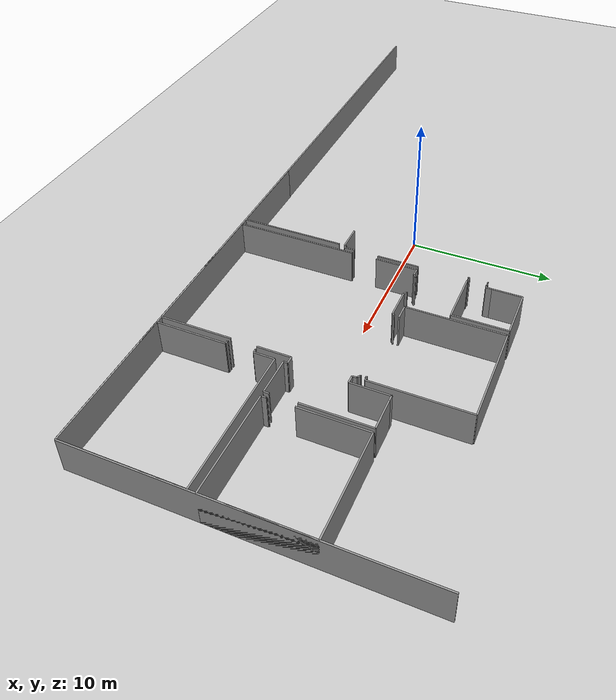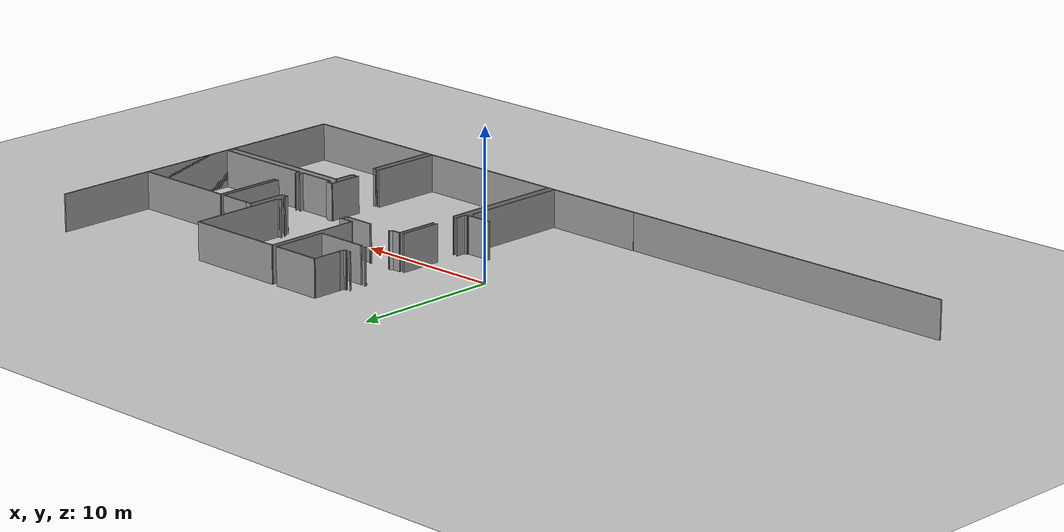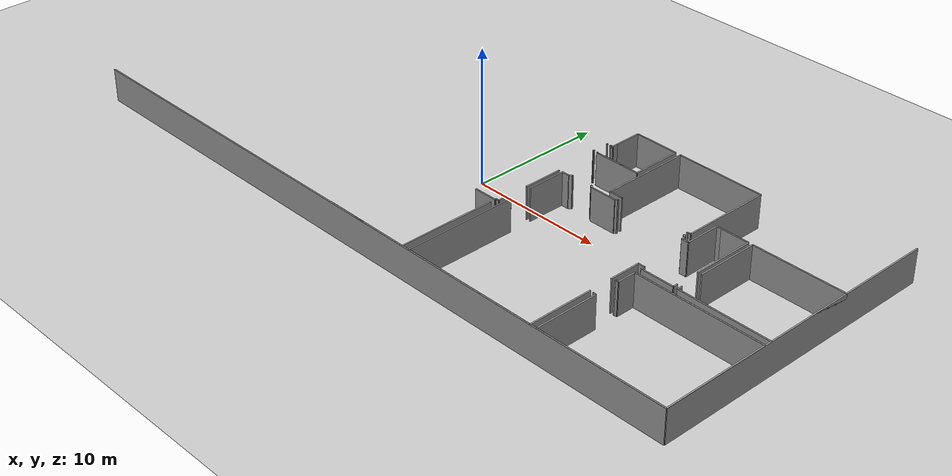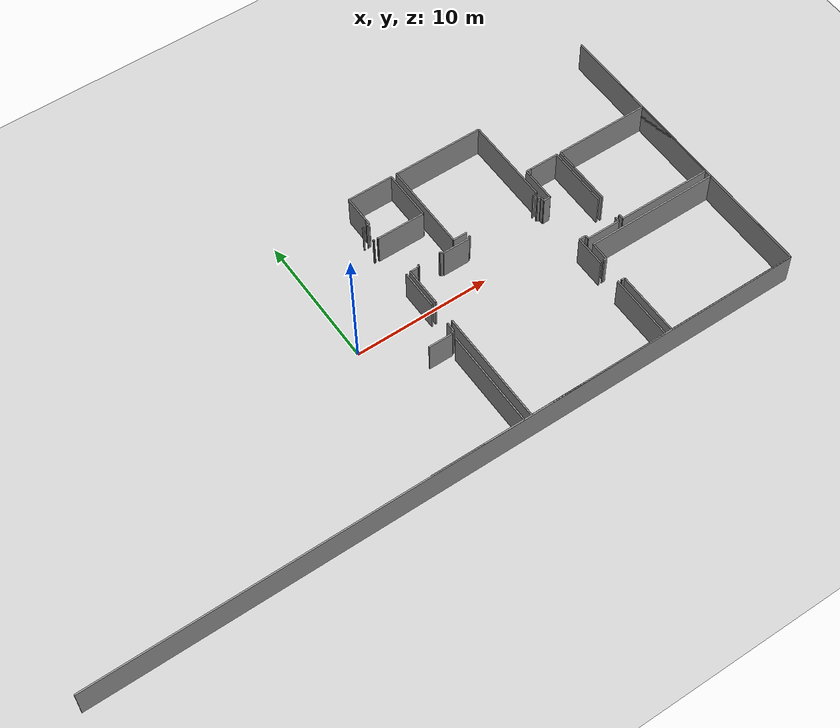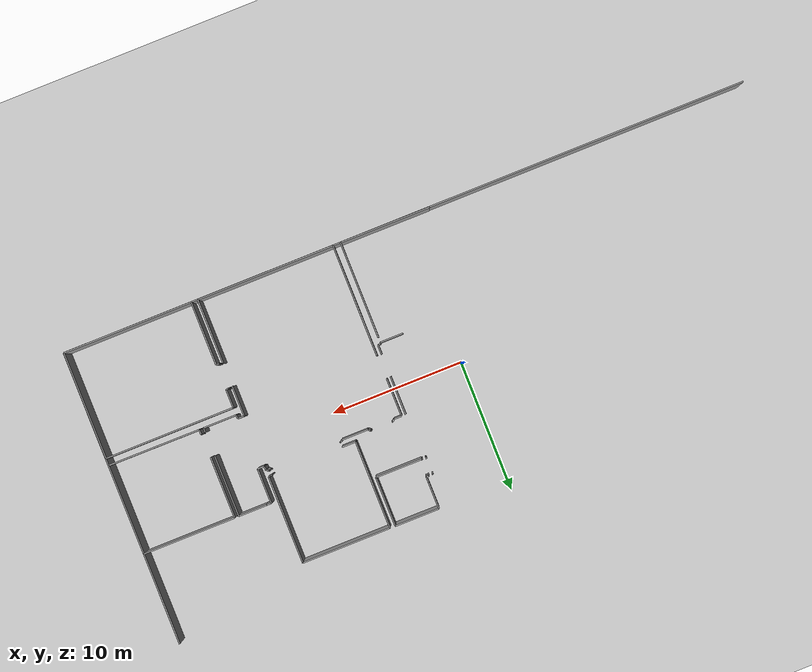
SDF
<sdf version="1.6">
 <world name="default">
  <model name="ground_plane">
   <static>1</static>
   <link name="link">
    <collision name="collision">
     <geometry><plane><normal>0 0 1</normal><size>100 100</size></plane></geometry>
     <surface><friction><ode><mu>100</mu><mu2>50</mu2></ode></friction></surface>
    </collision>
    <visual name="visual">
     <cast_shadows>0</cast_shadows>
     <geometry><plane><normal>0 0 1</normal><size>100 100</size></plane></geometry>
     <material>
      <script><uri>file://media/materials/scripts/gazebo.material</uri><name>Gazebo/Grey</name></script>
     </material>
    </visual>
   </link>
  </model>
  <model name="0510030938_A_40_1_102">
   <static>1</static>
   <link name="Wall_103">
    <collision name="Wall_103_Collision">
     <geometry><box><size>0.0706623964211 0.1 2.5</size></box></geometry>
     <pose>0.0353311982106 0 1.25 0 0 0</pose>
    </collision>
    <visual name="Wall_103_Visual">
     <pose>0.0353311982106 0 1.25 0 0 0</pose>
     <geometry><box><size>0.0706623964211 0.1 2.5</size></box></geometry>
     <material>
      <script><uri>file://media/materials/scripts/gazebo.material</uri><name>Gazebo/Grey</name></script>
      <ambient>1 1 1 1</ambient>
     </material>
    </visual>
    <pose>31.049768695 -4.50993848813 0 0 0 -1.57079632679</pose>
   </link>
   <link name="Wall_104">
    <collision name="Wall_104_Collision">
     <geometry><box><size>0.108027044888 0.1 2.5</size></box></geometry>
     <pose>0.0540135224442 0 1.25 0 0 0</pose>
    </collision>
    <visual name="Wall_104_Visual">
     <pose>0.0540135224442 0 1.25 0 0 0</pose>
     <geometry><box><size>0.108027044888 0.1 2.5</size></box></geometry>
     <material>
      <script><uri>file://media/materials/scripts/gazebo.material</uri><name>Gazebo/Grey</name></script>
      <ambient>1 1 1 1</ambient>
     </material>
    </visual>
    <pose>31.049768695 -5.74106552793 0 0 0 -1.57079632679</pose>
   </link>
   <link name="Wall_105">
    <collision name="Wall_105_Collision">
     <geometry><box><size>0.0189365055157 0.1 2.5</size></box></geometry>
     <pose>0.00946825275786 0 1.25 0 0 0</pose>
    </collision>
    <visual name="Wall_105_Visual">
     <pose>0.00946825275786 0 1.25 0 0 0</pose>
     <geometry><box><size>0.0189365055157 0.1 2.5</size></box></geometry>
     <material>
      <script><uri>file://media/materials/scripts/gazebo.material</uri><name>Gazebo/Grey</name></script>
      <ambient>1 1 1 1</ambient>
     </material>
    </visual>
    <pose>31.049768695 -5.84909257282 0 0 0 3.14159265359</pose>
   </link>
   <link name="Wall_117">
    <collision name="Wall_117_Collision">
     <geometry><box><size>2.02252046159 0.1 2.5</size></box></geometry>
     <pose>1.0112602308 0 1.25 0 0 0</pose>
    </collision>
    <visual name="Wall_117_Visual">
     <pose>1.0112602308 0 1.25 0 0 0</pose>
     <geometry><box><size>2.02252046159 0.1 2.5</size></box></geometry>
     <material>
      <script><uri>file://media/materials/scripts/gazebo.material</uri><name>Gazebo/Grey</name></script>
      <ambient>1 1 1 1</ambient>
     </material>
    </visual>
    <pose>31.5492349143 -4.12739565858 0 0 0 1.57079632679</pose>
   </link>
   <link name="Wall_118">
    <collision name="Wall_118_Collision">
     <geometry><box><size>3.36053073052 0.1 2.5</size></box></geometry>
     <pose>1.68026536526 0 1.25 0 0 0</pose>
    </collision>
    <visual name="Wall_118_Visual">
     <pose>1.68026536526 0 1.25 0 0 0</pose>
     <geometry><box><size>3.36053073052 0.1 2.5</size></box></geometry>
     <material>
      <script><uri>file://media/materials/scripts/gazebo.material</uri><name>Gazebo/Grey</name></script>
      <ambient>1 1 1 1</ambient>
     </material>
    </visual>
    <pose>31.5492349143 -2.10487519699 0 0 0 0.0</pose>
   </link>
   <link name="Wall_119">
    <collision name="Wall_119_Collision">
     <geometry><box><size>3.74065883788 0.1 2.5</size></box></geometry>
     <pose>1.87032941894 0 1.25 0 0 0</pose>
    </collision>
    <visual name="Wall_119_Visual">
     <pose>1.87032941894 0 1.25 0 0 0</pose>
     <geometry><box><size>3.74065883788 0.1 2.5</size></box></geometry>
     <material>
      <script><uri>file://media/materials/scripts/gazebo.material</uri><name>Gazebo/Grey</name></script>
      <ambient>1 1 1 1</ambient>
     </material>
    </visual>
    <pose>34.9097656449 -2.10487519699 0 0 0 -1.57079632679</pose>
   </link>
   <link name="Wall_120">
    <collision name="Wall_120_Collision">
     <geometry><box><size>3.54468506939 0.1 2.5</size></box></geometry>
     <pose>1.7723425347 0 1.25 0 0 0</pose>
    </collision>
    <visual name="Wall_120_Visual">
     <pose>1.7723425347 0 1.25 0 0 0</pose>
     <geometry><box><size>3.54468506939 0.1 2.5</size></box></geometry>
     <material>
      <script><uri>file://media/materials/scripts/gazebo.material</uri><name>Gazebo/Grey</name></script>
      <ambient>1 1 1 1</ambient>
     </material>
    </visual>
    <pose>34.9097656449 -5.84553403487 0 0 0 3.14159265359</pose>
   </link>
   <link name="Wall_121">
    <collision name="Wall_121_Collision">
     <geometry><box><size>0.0822276447562 0.1 2.5</size></box></geometry>
     <pose>0.0411138223781 0 1.25 0 0 0</pose>
    </collision>
    <visual name="Wall_121_Visual">
     <pose>0.0411138223781 0 1.25 0 0 0</pose>
     <geometry><box><size>0.0822276447562 0.1 2.5</size></box></geometry>
     <material>
      <script><uri>file://media/materials/scripts/gazebo.material</uri><name>Gazebo/Grey</name></script>
      <ambient>1 1 1 1</ambient>
     </material>
    </visual>
    <pose>31.3650805755 -5.84553403487 0 0 0 1.57079632679</pose>
   </link>
   <link name="Wall_122">
    <collision name="Wall_122_Collision">
     <geometry><box><size>0.0686289461644 0.1 2.5</size></box></geometry>
     <pose>0.0343144730822 0 1.25 0 0 0</pose>
    </collision>
    <visual name="Wall_122_Visual">
     <pose>0.0343144730822 0 1.25 0 0 0</pose>
     <geometry><box><size>0.0686289461644 0.1 2.5</size></box></geometry>
     <material>
      <script><uri>file://media/materials/scripts/gazebo.material</uri><name>Gazebo/Grey</name></script>
      <ambient>1 1 1 1</ambient>
     </material>
    </visual>
    <pose>31.3650805755 -4.5884805043 0 0 0 1.57079632679</pose>
   </link>
   <link name="Wall_123">
    <collision name="Wall_123_Collision">
     <geometry><box><size>0.185933607849 0.1 2.5</size></box></geometry>
     <pose>0.0929668039246 0 1.25 0 0 0</pose>
    </collision>
    <visual name="Wall_123_Visual">
     <pose>0.0929668039246 0 1.25 0 0 0</pose>
     <geometry><box><size>0.185933607849 0.1 2.5</size></box></geometry>
     <material>
      <script><uri>file://media/materials/scripts/gazebo.material</uri><name>Gazebo/Grey</name></script>
      <ambient>1 1 1 1</ambient>
     </material>
    </visual>
    <pose>31.3650805755 -4.51985155813 0 0 0 0.0</pose>
   </link>
   <link name="Wall_124">
    <collision name="Wall_124_Collision">
     <geometry><box><size>0.392459932844 0.1 2.5</size></box></geometry>
     <pose>0.196229966422 0 1.25 0 0 0</pose>
    </collision>
    <visual name="Wall_124_Visual">
     <pose>0.196229966422 0 1.25 0 0 0</pose>
     <geometry><box><size>0.392459932844 0.1 2.5</size></box></geometry>
     <material>
      <script><uri>file://media/materials/scripts/gazebo.material</uri><name>Gazebo/Grey</name></script>
      <ambient>1 1 1 1</ambient>
     </material>
    </visual>
    <pose>31.5510141833 -4.51985155813 0 0 0 1.57532997449</pose>
   </link>
   <link name="Wall_154">
    <collision name="Wall_154_Collision">
     <geometry><box><size>7.29792588074 0.1 2.5</size></box></geometry>
     <pose>3.64896294037 0 1.25 0 0 0</pose>
    </collision>
    <visual name="Wall_154_Visual">
     <pose>3.64896294037 0 1.25 0 0 0</pose>
     <geometry><box><size>7.29792588074 0.1 2.5</size></box></geometry>
     <material>
      <script><uri>file://media/materials/scripts/gazebo.material</uri><name>Gazebo/Grey</name></script>
      <ambient>1 1 1 1</ambient>
     </material>
    </visual>
    <pose>31.0430328911 -15.0887092674 0 0 0 -1.57079632679</pose>
   </link>
   <link name="Wall_155">
    <collision name="Wall_155_Collision">
     <geometry><box><size>6.85058767749 0.1 2.5</size></box></geometry>
     <pose>3.42529383874 0 1.25 0 0 0</pose>
    </collision>
    <visual name="Wall_155_Visual">
     <pose>3.42529383874 0 1.25 0 0 0</pose>
     <geometry><box><size>6.85058767749 0.1 2.5</size></box></geometry>
     <material>
      <script><uri>file://media/materials/scripts/gazebo.material</uri><name>Gazebo/Grey</name></script>
      <ambient>1 1 1 1</ambient>
     </material>
    </visual>
    <pose>31.0430328911 -22.3866351482 0 0 0 3.13912526346</pose>
   </link>
   <link name="Wall_197">
    <collision name="Wall_197_Collision">
     <geometry><box><size>2.92333892532 0.1 2.5</size></box></geometry>
     <pose>1.46166946266 0 1.25 0 0 0</pose>
    </collision>
    <visual name="Wall_197_Visual">
     <pose>1.46166946266 0 1.25 0 0 0</pose>
     <geometry><box><size>2.92333892532 0.1 2.5</size></box></geometry>
     <material>
      <script><uri>file://media/materials/scripts/gazebo.material</uri><name>Gazebo/Grey</name></script>
      <ambient>1 1 1 1</ambient>
     </material>
    </visual>
    <pose>31.2686187789 -9.23694779116 0 0 0 -1.57079632679</pose>
   </link>
   <link name="Wall_198">
    <collision name="Wall_198_Collision">
     <geometry><box><size>0.722891566265 0.1 2.5</size></box></geometry>
     <pose>0.361445783133 0 1.25 0 0 0</pose>
    </collision>
    <visual name="Wall_198_Visual">
     <pose>0.361445783133 0 1.25 0 0 0</pose>
     <geometry><box><size>0.722891566265 0.1 2.5</size></box></geometry>
     <material>
      <script><uri>file://media/materials/scripts/gazebo.material</uri><name>Gazebo/Grey</name></script>
      <ambient>1 1 1 1</ambient>
     </material>
    </visual>
    <pose>31.2686187789 -13.8716892888 0 0 0 -1.57079632679</pose>
   </link>
   <link name="Wall_199">
    <collision name="Wall_199_Collision">
     <geometry><box><size>0.212876823751 0.1 2.5</size></box></geometry>
     <pose>0.106438411875 0 1.25 0 0 0</pose>
    </collision>
    <visual name="Wall_199_Visual">
     <pose>0.106438411875 0 1.25 0 0 0</pose>
     <geometry><box><size>0.212876823751 0.1 2.5</size></box></geometry>
     <material>
      <script><uri>file://media/materials/scripts/gazebo.material</uri><name>Gazebo/Grey</name></script>
      <ambient>1 1 1 1</ambient>
     </material>
    </visual>
    <pose>31.2686187789 -14.5945808551 0 0 0 3.14159265359</pose>
   </link>
   <link name="Wall_200">
    <collision name="Wall_200_Collision">
     <geometry><box><size>0.103833053734 0.1 2.5</size></box></geometry>
     <pose>0.051916526867 0 1.25 0 0 0</pose>
    </collision>
    <visual name="Wall_200_Visual">
     <pose>0.051916526867 0 1.25 0 0 0</pose>
     <geometry><box><size>0.103833053734 0.1 2.5</size></box></geometry>
     <material>
      <script><uri>file://media/materials/scripts/gazebo.material</uri><name>Gazebo/Grey</name></script>
      <ambient>1 1 1 1</ambient>
     </material>
    </visual>
    <pose>31.0557419552 -14.5945808551 0 0 0 -1.57079632679</pose>
   </link>
   <link name="Wall_201">
    <collision name="Wall_201_Collision">
     <geometry><box><size>1.77316862386 0.1 2.5</size></box></geometry>
     <pose>0.886584311931 0 1.25 0 0 0</pose>
    </collision>
    <visual name="Wall_201_Visual">
     <pose>0.886584311931 0 1.25 0 0 0</pose>
     <geometry><box><size>1.77316862386 0.1 2.5</size></box></geometry>
     <material>
      <script><uri>file://media/materials/scripts/gazebo.material</uri><name>Gazebo/Grey</name></script>
      <ambient>1 1 1 1</ambient>
     </material>
    </visual>
    <pose>31.0557419552 -14.6984139088 0 0 0 3.14159265359</pose>
   </link>
   <link name="Wall_229">
    <collision name="Wall_229_Collision">
     <geometry><box><size>8.47122667887 0.1 2.5</size></box></geometry>
     <pose>4.23561333943 0 1.25 0 0 0</pose>
    </collision>
    <visual name="Wall_229_Visual">
     <pose>4.23561333943 0 1.25 0 0 0</pose>
     <geometry><box><size>8.47122667887 0.1 2.5</size></box></geometry>
     <material>
      <script><uri>file://media/materials/scripts/gazebo.material</uri><name>Gazebo/Grey</name></script>
      <ambient>1 1 1 1</ambient>
     </material>
    </visual>
    <pose>31.6165929541 -22.3802806161 0 0 0 1.57079632679</pose>
   </link>
   <link name="Wall_230">
    <collision name="Wall_230_Collision">
     <geometry><box><size>0.039271008083 0.1 2.5</size></box></geometry>
     <pose>0.0196355040415 0 1.25 0 0 0</pose>
    </collision>
    <visual name="Wall_230_Visual">
     <pose>0.0196355040415 0 1.25 0 0 0</pose>
     <geometry><box><size>0.039271008083 0.1 2.5</size></box></geometry>
     <material>
      <script><uri>file://media/materials/scripts/gazebo.material</uri><name>Gazebo/Grey</name></script>
      <ambient>1 1 1 1</ambient>
     </material>
    </visual>
    <pose>31.6165929541 -13.9090539373 0 0 0 3.14159265359</pose>
   </link>
   <link name="Wall_231">
    <collision name="Wall_231_Collision">
     <geometry><box><size>0.0203345025672 0.1 2.5</size></box></geometry>
     <pose>0.0101672512836 0 1.25 0 0 0</pose>
    </collision>
    <visual name="Wall_231_Visual">
     <pose>0.0101672512836 0 1.25 0 0 0</pose>
     <geometry><box><size>0.0203345025672 0.1 2.5</size></box></geometry>
     <material>
      <script><uri>file://media/materials/scripts/gazebo.material</uri><name>Gazebo/Grey</name></script>
      <ambient>1 1 1 1</ambient>
     </material>
    </visual>
    <pose>31.577321946 -13.9090539373 0 0 0 1.57079632679</pose>
   </link>
   <link name="Wall_232">
    <collision name="Wall_232_Collision">
     <geometry><box><size>2.89931879416 0.1 2.5</size></box></geometry>
     <pose>1.44965939708 0 1.25 0 0 0</pose>
    </collision>
    <visual name="Wall_232_Visual">
     <pose>1.44965939708 0 1.25 0 0 0</pose>
     <geometry><box><size>2.89931879416 0.1 2.5</size></box></geometry>
     <material>
      <script><uri>file://media/materials/scripts/gazebo.material</uri><name>Gazebo/Grey</name></script>
      <ambient>1 1 1 1</ambient>
     </material>
    </visual>
    <pose>31.577321946 -12.1451629302 0 0 0 1.57079632679</pose>
   </link>
   <link name="Wall_233">
    <collision name="Wall_233_Collision">
     <geometry><box><size>0.573178791114 0.1 2.5</size></box></geometry>
     <pose>0.286589395557 0 1.25 0 0 0</pose>
    </collision>
    <visual name="Wall_233_Visual">
     <pose>0.286589395557 0 1.25 0 0 0</pose>
     <geometry><box><size>0.573178791114 0.1 2.5</size></box></geometry>
     <material>
      <script><uri>file://media/materials/scripts/gazebo.material</uri><name>Gazebo/Grey</name></script>
      <ambient>1 1 1 1</ambient>
     </material>
    </visual>
    <pose>31.577321946 -9.24584413604 0 0 0 0.0</pose>
   </link>
   <link name="Wall_234">
    <collision name="Wall_234_Collision">
     <geometry><box><size>0.225832666719 0.1 2.5</size></box></geometry>
     <pose>0.11291633336 0 1.25 0 0 0</pose>
    </collision>
    <visual name="Wall_234_Visual">
     <pose>0.11291633336 0 1.25 0 0 0</pose>
     <geometry><box><size>0.225832666719 0.1 2.5</size></box></geometry>
     <material>
      <script><uri>file://media/materials/scripts/gazebo.material</uri><name>Gazebo/Grey</name></script>
      <ambient>1 1 1 1</ambient>
     </material>
    </visual>
    <pose>32.1505007371 -9.24584413604 0 0 0 0.757539130968</pose>
   </link>
   <link name="Wall_235">
    <collision name="Wall_235_Collision">
     <geometry><box><size>0.0624015047532 0.1 2.5</size></box></geometry>
     <pose>0.0312007523766 0 1.25 0 0 0</pose>
    </collision>
    <visual name="Wall_235_Visual">
     <pose>0.0312007523766 0 1.25 0 0 0</pose>
     <geometry><box><size>0.0624015047532 0.1 2.5</size></box></geometry>
     <material>
      <script><uri>file://media/materials/scripts/gazebo.material</uri><name>Gazebo/Grey</name></script>
      <ambient>1 1 1 1</ambient>
     </material>
    </visual>
    <pose>32.3145747547 -9.09066646332 0 0 0 0.0</pose>
   </link>
   <link name="Wall_236">
    <collision name="Wall_236_Collision">
     <geometry><box><size>0.0707894870622 0.1 2.5</size></box></geometry>
     <pose>0.0353947435311 0 1.25 0 0 0</pose>
    </collision>
    <visual name="Wall_236_Visual">
     <pose>0.0353947435311 0 1.25 0 0 0</pose>
     <geometry><box><size>0.0707894870622 0.1 2.5</size></box></geometry>
     <material>
      <script><uri>file://media/materials/scripts/gazebo.material</uri><name>Gazebo/Grey</name></script>
      <ambient>1 1 1 1</ambient>
     </material>
    </visual>
    <pose>33.9529002084 -9.09066646332 0 0 0 0.0</pose>
   </link>
   <link name="Wall_237">
    <collision name="Wall_237_Collision">
     <geometry><box><size>0.206192022102 0.1 2.5</size></box></geometry>
     <pose>0.103096011051 0 1.25 0 0 0</pose>
    </collision>
    <visual name="Wall_237_Visual">
     <pose>0.103096011051 0 1.25 0 0 0</pose>
     <geometry><box><size>0.206192022102 0.1 2.5</size></box></geometry>
     <material>
      <script><uri>file://media/materials/scripts/gazebo.material</uri><name>Gazebo/Grey</name></script>
      <ambient>1 1 1 1</ambient>
     </material>
    </visual>
    <pose>34.0236896955 -9.09066646332 0 0 0 -0.804576282606</pose>
   </link>
   <link name="Wall_238">
    <collision name="Wall_238_Collision">
     <geometry><box><size>2.02226628031 0.1 2.5</size></box></geometry>
     <pose>1.01113314016 0 1.25 0 0 0</pose>
    </collision>
    <visual name="Wall_238_Visual">
     <pose>1.01113314016 0 1.25 0 0 0</pose>
     <geometry><box><size>2.02226628031 0.1 2.5</size></box></geometry>
     <material>
      <script><uri>file://media/materials/scripts/gazebo.material</uri><name>Gazebo/Grey</name></script>
      <ambient>1 1 1 1</ambient>
     </material>
    </visual>
    <pose>34.1666666667 -9.2392354227 0 0 0 0.0</pose>
   </link>
   <link name="Wall_239">
    <collision name="Wall_239_Collision">
     <geometry><box><size>0.161914125112 0.1 2.5</size></box></geometry>
     <pose>0.080957062556 0 1.25 0 0 0</pose>
    </collision>
    <visual name="Wall_239_Visual">
     <pose>0.080957062556 0 1.25 0 0 0</pose>
     <geometry><box><size>0.161914125112 0.1 2.5</size></box></geometry>
     <material>
      <script><uri>file://media/materials/scripts/gazebo.material</uri><name>Gazebo/Grey</name></script>
      <ambient>1 1 1 1</ambient>
     </material>
    </visual>
    <pose>36.188932947 -9.2392354227 0 0 0 0.883796589588</pose>
   </link>
   <link name="Wall_240">
    <collision name="Wall_240_Collision">
     <geometry><box><size>0.0893447206548 0.1 2.5</size></box></geometry>
     <pose>0.0446723603274 0 1.25 0 0 0</pose>
    </collision>
    <visual name="Wall_240_Visual">
     <pose>0.0446723603274 0 1.25 0 0 0</pose>
     <geometry><box><size>0.0893447206548 0.1 2.5</size></box></geometry>
     <material>
      <script><uri>file://media/materials/scripts/gazebo.material</uri><name>Gazebo/Grey</name></script>
      <ambient>1 1 1 1</ambient>
     </material>
    </visual>
    <pose>36.2916221849 -9.11405114127 0 0 0 0.0</pose>
   </link>
   <link name="Wall_241">
    <collision name="Wall_241_Collision">
     <geometry><box><size>0.0660871333435 0.1 2.5</size></box></geometry>
     <pose>0.0330435666717 0 1.25 0 0 0</pose>
    </collision>
    <visual name="Wall_241_Visual">
     <pose>0.0330435666717 0 1.25 0 0 0</pose>
     <geometry><box><size>0.0660871333435 0.1 2.5</size></box></geometry>
     <material>
      <script><uri>file://media/materials/scripts/gazebo.material</uri><name>Gazebo/Grey</name></script>
      <ambient>1 1 1 1</ambient>
     </material>
    </visual>
    <pose>41.7764729805 -9.11405114127 0 0 0 0.0</pose>
   </link>
   <link name="Wall_242">
    <collision name="Wall_242_Collision">
     <geometry><box><size>0.185134032176 0.1 2.5</size></box></geometry>
     <pose>0.0925670160878 0 1.25 0 0 0</pose>
    </collision>
    <visual name="Wall_242_Visual">
     <pose>0.0925670160878 0 1.25 0 0 0</pose>
     <geometry><box><size>0.185134032176 0.1 2.5</size></box></geometry>
     <material>
      <script><uri>file://media/materials/scripts/gazebo.material</uri><name>Gazebo/Grey</name></script>
      <ambient>1 1 1 1</ambient>
     </material>
    </visual>
    <pose>41.8425601139 -9.11405114127 0 0 0 -0.775689730563</pose>
   </link>
   <link name="Wall_243">
    <collision name="Wall_243_Collision">
     <geometry><box><size>0.0578262416756 0.1 2.5</size></box></geometry>
     <pose>0.0289131208378 0 1.25 0 0 0</pose>
    </collision>
    <visual name="Wall_243_Visual">
     <pose>0.0289131208378 0 1.25 0 0 0</pose>
     <geometry><box><size>0.0578262416756 0.1 2.5</size></box></geometry>
     <material>
      <script><uri>file://media/materials/scripts/gazebo.material</uri><name>Gazebo/Grey</name></script>
      <ambient>1 1 1 1</ambient>
     </material>
    </visual>
    <pose>41.9747343806 -9.24368359514 0 0 0 0.0</pose>
   </link>
   <link name="Wall_244">
    <collision name="Wall_244_Collision">
     <geometry><box><size>0.300569366072 0.1 2.5</size></box></geometry>
     <pose>0.150284683036 0 1.25 0 0 0</pose>
    </collision>
    <visual name="Wall_244_Visual">
     <pose>0.150284683036 0 1.25 0 0 0</pose>
     <geometry><box><size>0.300569366072 0.1 2.5</size></box></geometry>
     <material>
      <script><uri>file://media/materials/scripts/gazebo.material</uri><name>Gazebo/Grey</name></script>
      <ambient>1 1 1 1</ambient>
     </material>
    </visual>
    <pose>42.0325606222 -9.24368359514 0 0 0 -1.57079632679</pose>
   </link>
   <link name="Wall_245">
    <collision name="Wall_245_Collision">
     <geometry><box><size>0.514590005592 0.1 2.5</size></box></geometry>
     <pose>0.257295002796 0 1.25 0 0 0</pose>
    </collision>
    <visual name="Wall_245_Visual">
     <pose>0.257295002796 0 1.25 0 0 0</pose>
     <geometry><box><size>0.514590005592 0.1 2.5</size></box></geometry>
     <material>
      <script><uri>file://media/materials/scripts/gazebo.material</uri><name>Gazebo/Grey</name></script>
      <ambient>1 1 1 1</ambient>
     </material>
    </visual>
    <pose>42.0325606222 -9.54425296121 0 0 0 0.0</pose>
   </link>
   <link name="Wall_246">
    <collision name="Wall_246_Collision">
     <geometry><box><size>2.62937827258 0.1 2.5</size></box></geometry>
     <pose>1.31468913629 0 1.25 0 0 0</pose>
    </collision>
    <visual name="Wall_246_Visual">
     <pose>1.31468913629 0 1.25 0 0 0</pose>
     <geometry><box><size>2.62937827258 0.1 2.5</size></box></geometry>
     <material>
      <script><uri>file://media/materials/scripts/gazebo.material</uri><name>Gazebo/Grey</name></script>
      <ambient>1 1 1 1</ambient>
     </material>
    </visual>
    <pose>42.5471506278 -9.54425296121 0 0 0 1.57079632679</pose>
   </link>
   <link name="Wall_247">
    <collision name="Wall_247_Collision">
     <geometry><box><size>0.364495958518 0.1 2.5</size></box></geometry>
     <pose>0.182247979259 0 1.25 0 0 0</pose>
    </collision>
    <visual name="Wall_247_Visual">
     <pose>0.182247979259 0 1.25 0 0 0</pose>
     <geometry><box><size>0.364495958518 0.1 2.5</size></box></geometry>
     <material>
      <script><uri>file://media/materials/scripts/gazebo.material</uri><name>Gazebo/Grey</name></script>
      <ambient>1 1 1 1</ambient>
     </material>
    </visual>
    <pose>42.5471506278 -6.91487468863 0 0 0 0.0</pose>
   </link>
   <link name="Wall_248">
    <collision name="Wall_248_Collision">
     <geometry><box><size>2.14147730161 0.1 2.5</size></box></geometry>
     <pose>1.07073865081 0 1.25 0 0 0</pose>
    </collision>
    <visual name="Wall_248_Visual">
     <pose>1.07073865081 0 1.25 0 0 0</pose>
     <geometry><box><size>2.14147730161 0.1 2.5</size></box></geometry>
     <material>
      <script><uri>file://media/materials/scripts/gazebo.material</uri><name>Gazebo/Grey</name></script>
      <ambient>1 1 1 1</ambient>
     </material>
    </visual>
    <pose>42.9116465863 -6.91487468863 0 0 0 0.0</pose>
   </link>
   <link name="Wall_249">
    <collision name="Wall_249_Collision">
     <geometry><box><size>4.63639367597 0.1 2.5</size></box></geometry>
     <pose>2.31819683798 0 1.25 0 0 0</pose>
    </collision>
    <visual name="Wall_249_Visual">
     <pose>2.31819683798 0 1.25 0 0 0</pose>
     <geometry><box><size>4.63639367597 0.1 2.5</size></box></geometry>
     <material>
      <script><uri>file://media/materials/scripts/gazebo.material</uri><name>Gazebo/Grey</name></script>
      <ambient>1 1 1 1</ambient>
     </material>
    </visual>
    <pose>45.053123888 -6.91487468863 0 0 0 -1.57079632679</pose>
   </link>
   <link name="Wall_250">
    <collision name="Wall_250_Collision">
     <geometry><box><size>0.351913985054 0.1 2.5</size></box></geometry>
     <pose>0.175956992527 0 1.25 0 0 0</pose>
    </collision>
    <visual name="Wall_250_Visual">
     <pose>0.175956992527 0 1.25 0 0 0</pose>
     <geometry><box><size>0.351913985054 0.1 2.5</size></box></geometry>
     <material>
      <script><uri>file://media/materials/scripts/gazebo.material</uri><name>Gazebo/Grey</name></script>
      <ambient>1 1 1 1</ambient>
     </material>
    </visual>
    <pose>45.053123888 -13.3517614763 0 0 0 -1.57079632679</pose>
   </link>
   <link name="Wall_251">
    <collision name="Wall_251_Collision">
     <geometry><box><size>2.51537796757 0.1 2.5</size></box></geometry>
     <pose>1.25768898378 0 1.25 0 0 0</pose>
    </collision>
    <visual name="Wall_251_Visual">
     <pose>1.25768898378 0 1.25 0 0 0</pose>
     <geometry><box><size>2.51537796757 0.1 2.5</size></box></geometry>
     <material>
      <script><uri>file://media/materials/scripts/gazebo.material</uri><name>Gazebo/Grey</name></script>
      <ambient>1 1 1 1</ambient>
     </material>
    </visual>
    <pose>45.053123888 -13.7036754613 0 0 0 3.14159265359</pose>
   </link>
   <link name="Wall_252">
    <collision name="Wall_252_Collision">
     <geometry><box><size>0.279599410299 0.1 2.5</size></box></geometry>
     <pose>0.13979970515 0 1.25 0 0 0</pose>
    </collision>
    <visual name="Wall_252_Visual">
     <pose>0.13979970515 0 1.25 0 0 0</pose>
     <geometry><box><size>0.279599410299 0.1 2.5</size></box></geometry>
     <material>
      <script><uri>file://media/materials/scripts/gazebo.material</uri><name>Gazebo/Grey</name></script>
      <ambient>1 1 1 1</ambient>
     </material>
    </visual>
    <pose>42.5377459204 -13.7036754613 0 0 0 1.57079632679</pose>
   </link>
   <link name="Wall_253">
    <collision name="Wall_253_Collision">
     <geometry><box><size>0.499466219308 0.1 2.5</size></box></geometry>
     <pose>0.249733109654 0 1.25 0 0 0</pose>
    </collision>
    <visual name="Wall_253_Visual">
     <pose>0.249733109654 0 1.25 0 0 0</pose>
     <geometry><box><size>0.499466219308 0.1 2.5</size></box></geometry>
     <material>
      <script><uri>file://media/materials/scripts/gazebo.material</uri><name>Gazebo/Grey</name></script>
      <ambient>1 1 1 1</ambient>
     </material>
    </visual>
    <pose>42.5377459204 -13.424076051 0 0 0 3.14159265359</pose>
   </link>
   <link name="Wall_254">
    <collision name="Wall_254_Collision">
     <geometry><box><size>2.3077118601 0.1 2.5</size></box></geometry>
     <pose>1.15385593005 0 1.25 0 0 0</pose>
    </collision>
    <visual name="Wall_254_Visual">
     <pose>1.15385593005 0 1.25 0 0 0</pose>
     <geometry><box><size>2.3077118601 0.1 2.5</size></box></geometry>
     <material>
      <script><uri>file://media/materials/scripts/gazebo.material</uri><name>Gazebo/Grey</name></script>
      <ambient>1 1 1 1</ambient>
     </material>
    </visual>
    <pose>42.0382797011 -13.424076051 0 0 0 -1.57079632679</pose>
   </link>
   <link name="Wall_255">
    <collision name="Wall_255_Collision">
     <geometry><box><size>4.89210004575 0.1 2.5</size></box></geometry>
     <pose>2.44605002288 0 1.25 0 0 0</pose>
    </collision>
    <visual name="Wall_255_Visual">
     <pose>2.44605002288 0 1.25 0 0 0</pose>
     <geometry><box><size>4.89210004575 0.1 2.5</size></box></geometry>
     <material>
      <script><uri>file://media/materials/scripts/gazebo.material</uri><name>Gazebo/Grey</name></script>
      <ambient>1 1 1 1</ambient>
     </material>
    </visual>
    <pose>42.0382797011 -17.4895785674 0 0 0 -1.57079632679</pose>
   </link>
   <link name="Wall_256">
    <collision name="Wall_256_Collision">
     <geometry><box><size>10.4216868408 0.1 2.5</size></box></geometry>
     <pose>5.21084342038 0 1.25 0 0 0</pose>
    </collision>
    <visual name="Wall_256_Visual">
     <pose>5.21084342038 0 1.25 0 0 0</pose>
     <geometry><box><size>10.4216868408 0.1 2.5</size></box></geometry>
     <material>
      <script><uri>file://media/materials/scripts/gazebo.material</uri><name>Gazebo/Grey</name></script>
      <ambient>1 1 1 1</ambient>
     </material>
    </visual>
    <pose>42.0382797011 -22.3816786132 0 0 0 3.14145851052</pose>
   </link>
   <link name="Wall_257">
    <collision name="Wall_257_Collision">
     <geometry><box><size>6.60312134614 0.1 2.5</size></box></geometry>
     <pose>3.30156067307 0 1.25 0 0 0</pose>
    </collision>
    <visual name="Wall_257_Visual">
     <pose>3.30156067307 0 1.25 0 0 0</pose>
     <geometry><box><size>6.60312134614 0.1 2.5</size></box></geometry>
     <material>
      <script><uri>file://media/materials/scripts/gazebo.material</uri><name>Gazebo/Grey</name></script>
      <ambient>1 1 1 1</ambient>
     </material>
    </visual>
    <pose>35.3154389711 -8.7177825225 0 0 0 1.57079632679</pose>
   </link>
   <link name="Wall_258">
    <collision name="Wall_258_Collision">
     <geometry><box><size>6.7144527477 0.1 2.5</size></box></geometry>
     <pose>3.35722637385 0 1.25 0 0 0</pose>
    </collision>
    <visual name="Wall_258_Visual">
     <pose>3.35722637385 0 1.25 0 0 0</pose>
     <geometry><box><size>6.7144527477 0.1 2.5</size></box></geometry>
     <material>
      <script><uri>file://media/materials/scripts/gazebo.material</uri><name>Gazebo/Grey</name></script>
      <ambient>1 1 1 1</ambient>
     </material>
    </visual>
    <pose>35.3154389711 -2.11466117635 0 0 0 0.0</pose>
   </link>
   <link name="Wall_259">
    <collision name="Wall_259_Collision">
     <geometry><box><size>6.61570331961 0.1 2.5</size></box></geometry>
     <pose>3.3078516598 0 1.25 0 0 0</pose>
    </collision>
    <visual name="Wall_259_Visual">
     <pose>3.3078516598 0 1.25 0 0 0</pose>
     <geometry><box><size>6.61570331961 0.1 2.5</size></box></geometry>
     <material>
      <script><uri>file://media/materials/scripts/gazebo.material</uri><name>Gazebo/Grey</name></script>
      <ambient>1 1 1 1</ambient>
     </material>
    </visual>
    <pose>42.0298917188 -2.11466117635 0 0 0 -1.57079632679</pose>
   </link>
   <link name="Wall_260">
    <collision name="Wall_260_Collision">
     <geometry><box><size>0.176655991053 0.1 2.5</size></box></geometry>
     <pose>0.0883279955264 0 1.25 0 0 0</pose>
    </collision>
    <visual name="Wall_260_Visual">
     <pose>0.0883279955264 0 1.25 0 0 0</pose>
     <geometry><box><size>0.176655991053 0.1 2.5</size></box></geometry>
     <material>
      <script><uri>file://media/materials/scripts/gazebo.material</uri><name>Gazebo/Grey</name></script>
      <ambient>1 1 1 1</ambient>
     </material>
    </visual>
    <pose>42.0298917188 -8.73036449596 0 0 0 3.14159265359</pose>
   </link>
   <link name="Wall_261">
    <collision name="Wall_261_Collision">
     <geometry><box><size>0.030883025774 0.1 2.5</size></box></geometry>
     <pose>0.015441512887 0 1.25 0 0 0</pose>
    </collision>
    <visual name="Wall_261_Visual">
     <pose>0.015441512887 0 1.25 0 0 0</pose>
     <geometry><box><size>0.030883025774 0.1 2.5</size></box></geometry>
     <material>
      <script><uri>file://media/materials/scripts/gazebo.material</uri><name>Gazebo/Grey</name></script>
      <ambient>1 1 1 1</ambient>
     </material>
    </visual>
    <pose>41.8532357277 -8.73036449596 0 0 0 -1.57079632679</pose>
   </link>
   <link name="Wall_262">
    <collision name="Wall_262_Collision">
     <geometry><box><size>0.130649178994 0.1 2.5</size></box></geometry>
     <pose>0.0653245894972 0 1.25 0 0 0</pose>
    </collision>
    <visual name="Wall_262_Visual">
     <pose>0.0653245894972 0 1.25 0 0 0</pose>
     <geometry><box><size>0.130649178994 0.1 2.5</size></box></geometry>
     <material>
      <script><uri>file://media/materials/scripts/gazebo.material</uri><name>Gazebo/Grey</name></script>
      <ambient>1 1 1 1</ambient>
     </material>
    </visual>
    <pose>41.8532357277 -8.76124752173 0 0 0 3.14159265359</pose>
   </link>
   <link name="Wall_263">
    <collision name="Wall_263_Collision">
     <geometry><box><size>1.03896599054 0.1 2.5</size></box></geometry>
     <pose>0.519482995272 0 1.25 0 0 0</pose>
    </collision>
    <visual name="Wall_263_Visual">
     <pose>0.519482995272 0 1.25 0 0 0</pose>
     <geometry><box><size>1.03896599054 0.1 2.5</size></box></geometry>
     <material>
      <script><uri>file://media/materials/scripts/gazebo.material</uri><name>Gazebo/Grey</name></script>
      <ambient>1 1 1 1</ambient>
     </material>
    </visual>
    <pose>36.3522444207 -8.76124752173 0 0 0 3.14159265359</pose>
   </link>
   <link name="Wall_264">
    <collision name="Wall_264_Collision">
     <geometry><box><size>0.0435186637626 0.1 2.5</size></box></geometry>
     <pose>0.0217593318813 0 1.25 0 0 0</pose>
    </collision>
    <visual name="Wall_264_Visual">
     <pose>0.0217593318813 0 1.25 0 0 0</pose>
     <geometry><box><size>0.0435186637626 0.1 2.5</size></box></geometry>
     <material>
      <script><uri>file://media/materials/scripts/gazebo.material</uri><name>Gazebo/Grey</name></script>
      <ambient>1 1 1 1</ambient>
     </material>
    </visual>
    <pose>35.3132784302 -8.76124752173 0 0 0 1.52112960381</pose>
   </link>
   <link name="Wall_265">
    <collision name="Wall_265_Collision">
     <geometry><box><size>0.361954145697 0.1 2.5</size></box></geometry>
     <pose>0.180977072848 0 1.25 0 0 0</pose>
    </collision>
    <visual name="Wall_265_Visual">
     <pose>0.180977072848 0 1.25 0 0 0</pose>
     <geometry><box><size>0.361954145697 0.1 2.5</size></box></geometry>
     <material>
      <script><uri>file://media/materials/scripts/gazebo.material</uri><name>Gazebo/Grey</name></script>
      <ambient>1 1 1 1</ambient>
     </material>
    </visual>
    <pose>45.3871180926 -13.6992272889 0 0 0 1.57079632679</pose>
   </link>
   <link name="Wall_266">
    <collision name="Wall_266_Collision">
     <geometry><box><size>0.0263077626964 0.1 2.5</size></box></geometry>
     <pose>0.0131538813482 0 1.25 0 0 0</pose>
    </collision>
    <visual name="Wall_266_Visual">
     <pose>0.0131538813482 0 1.25 0 0 0</pose>
     <geometry><box><size>0.0263077626964 0.1 2.5</size></box></geometry>
     <material>
      <script><uri>file://media/materials/scripts/gazebo.material</uri><name>Gazebo/Grey</name></script>
      <ambient>1 1 1 1</ambient>
     </material>
    </visual>
    <pose>45.3871180926 -13.3372731432 0 0 0 3.14159265359</pose>
   </link>
   <link name="Wall_267">
    <collision name="Wall_267_Collision">
     <geometry><box><size>4.6550760002 0.1 2.5</size></box></geometry>
     <pose>2.3275380001 0 1.25 0 0 0</pose>
    </collision>
    <visual name="Wall_267_Visual">
     <pose>2.3275380001 0 1.25 0 0 0</pose>
     <geometry><box><size>4.6550760002 0.1 2.5</size></box></geometry>
     <material>
      <script><uri>file://media/materials/scripts/gazebo.material</uri><name>Gazebo/Grey</name></script>
      <ambient>1 1 1 1</ambient>
     </material>
    </visual>
    <pose>45.3608103299 -11.5718570484 0 0 0 1.57079632679</pose>
   </link>
   <link name="Wall_268">
    <collision name="Wall_268_Collision">
     <geometry><box><size>7.00383813736 0.1 2.5</size></box></geometry>
     <pose>3.50191906868 0 1.25 0 0 0</pose>
    </collision>
    <visual name="Wall_268_Visual">
     <pose>3.50191906868 0 1.25 0 0 0</pose>
     <geometry><box><size>7.00383813736 0.1 2.5</size></box></geometry>
     <material>
      <script><uri>file://media/materials/scripts/gazebo.material</uri><name>Gazebo/Grey</name></script>
      <ambient>1 1 1 1</ambient>
     </material>
    </visual>
    <pose>45.3608103299 -6.91678104824 0 0 0 0.0</pose>
   </link>
   <link name="Wall_269">
    <collision name="Wall_269_Collision">
     <geometry><box><size>6.8095165472 0.1 2.5</size></box></geometry>
     <pose>3.4047582736 0 1.25 0 0 0</pose>
    </collision>
    <visual name="Wall_269_Visual">
     <pose>3.4047582736 0 1.25 0 0 0</pose>
     <geometry><box><size>6.8095165472 0.1 2.5</size></box></geometry>
     <material>
      <script><uri>file://media/materials/scripts/gazebo.material</uri><name>Gazebo/Grey</name></script>
      <ambient>1 1 1 1</ambient>
     </material>
    </visual>
    <pose>52.3646484673 -6.91678104824 0 0 0 -1.57079632679</pose>
   </link>
   <link name="Wall_270">
    <collision name="Wall_270_Collision">
     <geometry><box><size>6.97758288599 0.1 2.5</size></box></geometry>
     <pose>3.48879144299 0 1.25 0 0 0</pose>
    </collision>
    <visual name="Wall_270_Visual">
     <pose>3.48879144299 0 1.25 0 0 0</pose>
     <geometry><box><size>6.97758288599 0.1 2.5</size></box></geometry>
     <material>
      <script><uri>file://media/materials/scripts/gazebo.material</uri><name>Gazebo/Grey</name></script>
      <ambient>1 1 1 1</ambient>
     </material>
    </visual>
    <pose>52.3646484673 -13.7262975954 0 0 0 3.13771303297</pose>
   </link>
   <link name="Wall_271">
    <collision name="Wall_271_Collision">
     <geometry><box><size>4.82397946215 0.1 2.5</size></box></geometry>
     <pose>2.41198973108 0 1.25 0 0 0</pose>
    </collision>
    <visual name="Wall_271_Visual">
     <pose>2.41198973108 0 1.25 0 0 0</pose>
     <geometry><box><size>4.82397946215 0.1 2.5</size></box></geometry>
     <material>
      <script><uri>file://media/materials/scripts/gazebo.material</uri><name>Gazebo/Grey</name></script>
      <ambient>1 1 1 1</ambient>
     </material>
    </visual>
    <pose>42.5441004524 -22.3871435108 0 0 0 1.57079632679</pose>
   </link>
   <link name="Wall_272">
    <collision name="Wall_272_Collision">
     <geometry><box><size>0.230796604138 0.1 2.5</size></box></geometry>
     <pose>0.115398302069 0 1.25 0 0 0</pose>
    </collision>
    <visual name="Wall_272_Visual">
     <pose>0.115398302069 0 1.25 0 0 0</pose>
     <geometry><box><size>0.230796604138 0.1 2.5</size></box></geometry>
     <material>
      <script><uri>file://media/materials/scripts/gazebo.material</uri><name>Gazebo/Grey</name></script>
      <ambient>1 1 1 1</ambient>
     </material>
    </visual>
    <pose>42.5441004524 -17.5631640486 0 0 0 3.14159265359</pose>
   </link>
   <link name="Wall_273">
    <collision name="Wall_273_Collision">
     <geometry><box><size>0.0582075135987 0.1 2.5</size></box></geometry>
     <pose>0.0291037567994 0 1.25 0 0 0</pose>
    </collision>
    <visual name="Wall_273_Visual">
     <pose>0.0291037567994 0 1.25 0 0 0</pose>
     <geometry><box><size>0.0582075135987 0.1 2.5</size></box></geometry>
     <material>
      <script><uri>file://media/materials/scripts/gazebo.material</uri><name>Gazebo/Grey</name></script>
      <ambient>1 1 1 1</ambient>
     </material>
    </visual>
    <pose>42.3133038483 -17.5631640486 0 0 0 1.57079632679</pose>
   </link>
   <link name="Wall_274">
    <collision name="Wall_274_Collision">
     <geometry><box><size>0.0540135224442 0.1 2.5</size></box></geometry>
     <pose>0.0270067612221 0 1.25 0 0 0</pose>
    </collision>
    <visual name="Wall_274_Visual">
     <pose>0.0270067612221 0 1.25 0 0 0</pose>
     <geometry><box><size>0.0540135224442 0.1 2.5</size></box></geometry>
     <material>
      <script><uri>file://media/materials/scripts/gazebo.material</uri><name>Gazebo/Grey</name></script>
      <ambient>1 1 1 1</ambient>
     </material>
    </visual>
    <pose>42.3133038483 -15.7204768441 0 0 0 1.57079632679</pose>
   </link>
   <link name="Wall_275">
    <collision name="Wall_275_Collision">
     <geometry><box><size>0.225840069137 0.1 2.5</size></box></geometry>
     <pose>0.112920034569 0 1.25 0 0 0</pose>
    </collision>
    <visual name="Wall_275_Visual">
     <pose>0.112920034569 0 1.25 0 0 0</pose>
     <geometry><box><size>0.225840069137 0.1 2.5</size></box></geometry>
     <material>
      <script><uri>file://media/materials/scripts/gazebo.material</uri><name>Gazebo/Grey</name></script>
      <ambient>1 1 1 1</ambient>
     </material>
    </visual>
    <pose>42.3133038483 -15.6664633216 0 0 0 0.0</pose>
   </link>
   <link name="Wall_276">
    <collision name="Wall_276_Collision">
     <geometry><box><size>1.40422449291 0.1 2.5</size></box></geometry>
     <pose>0.702112246454 0 1.25 0 0 0</pose>
    </collision>
    <visual name="Wall_276_Visual">
     <pose>0.702112246454 0 1.25 0 0 0</pose>
     <geometry><box><size>1.40422449291 0.1 2.5</size></box></geometry>
     <material>
      <script><uri>file://media/materials/scripts/gazebo.material</uri><name>Gazebo/Grey</name></script>
      <ambient>1 1 1 1</ambient>
     </material>
    </visual>
    <pose>42.5391439174 -15.6664633216 0 0 0 1.57079632679</pose>
   </link>
   <link name="Wall_277">
    <collision name="Wall_277_Collision">
     <geometry><box><size>9.80669513497 0.1 2.5</size></box></geometry>
     <pose>4.90334756749 0 1.25 0 0 0</pose>
    </collision>
    <visual name="Wall_277_Visual">
     <pose>4.90334756749 0 1.25 0 0 0</pose>
     <geometry><box><size>9.80669513497 0.1 2.5</size></box></geometry>
     <material>
      <script><uri>file://media/materials/scripts/gazebo.material</uri><name>Gazebo/Grey</name></script>
      <ambient>1 1 1 1</ambient>
     </material>
    </visual>
    <pose>42.5391439174 -14.2622388287 0 0 0 0.0</pose>
   </link>
   <link name="Wall_278">
    <collision name="Wall_278_Collision">
     <geometry><box><size>8.12541304458 0.1 2.5</size></box></geometry>
     <pose>4.06270652229 0 1.25 0 0 0</pose>
    </collision>
    <visual name="Wall_278_Visual">
     <pose>4.06270652229 0 1.25 0 0 0</pose>
     <geometry><box><size>8.12541304458 0.1 2.5</size></box></geometry>
     <material>
      <script><uri>file://media/materials/scripts/gazebo.material</uri><name>Gazebo/Grey</name></script>
      <ambient>1 1 1 1</ambient>
     </material>
    </visual>
    <pose>52.3458390524 -14.2622388287 0 0 0 -1.57079632679</pose>
   </link>
   <link name="Wall_279">
    <collision name="Wall_279_Collision">
     <geometry><box><size>9.80173861315 0.1 2.5</size></box></geometry>
     <pose>4.90086930658 0 1.25 0 0 0</pose>
    </collision>
    <visual name="Wall_279_Visual">
     <pose>4.90086930658 0 1.25 0 0 0</pose>
     <geometry><box><size>9.80173861315 0.1 2.5</size></box></geometry>
     <material>
      <script><uri>file://media/materials/scripts/gazebo.material</uri><name>Gazebo/Grey</name></script>
      <ambient>1 1 1 1</ambient>
     </material>
    </visual>
    <pose>52.3458390524 -22.3876518733 0 0 0 3.14154078906</pose>
   </link>
   <link name="Wall_280">
    <collision name="Wall_280_Collision">
     <geometry><box><size>22.3940064054 0.1 2.5</size></box></geometry>
     <pose>11.1970032027 0 1.25 0 0 0</pose>
    </collision>
    <visual name="Wall_280_Visual">
     <pose>11.1970032027 0 1.25 0 0 0</pose>
     <geometry><box><size>22.3940064054 0.1 2.5</size></box></geometry>
     <material>
      <script><uri>file://media/materials/scripts/gazebo.material</uri><name>Gazebo/Grey</name></script>
      <ambient>1 1 1 1</ambient>
     </material>
    </visual>
    <pose>52.3646484673 -22.3940064054 0 0 0 1.57079632679</pose>
   </link>
   <link name="Wall_281">
    <collision name="Wall_281_Collision">
     <geometry><box><size>52.3646484673 0.1 2.5</size></box></geometry>
     <pose>26.1823242336 0 1.25 0 0 0</pose>
    </collision>
    <visual name="Wall_281_Visual">
     <pose>26.1823242336 0 1.25 0 0 0</pose>
     <geometry><box><size>52.3646484673 0.1 2.5</size></box></geometry>
     <material>
      <script><uri>file://media/materials/scripts/gazebo.material</uri><name>Gazebo/Grey</name></script>
      <ambient>1 1 1 1</ambient>
     </material>
    </visual>
    <pose>52.3646484673 -22.3940064054 0 0 0 3.14159265359</pose>
   </link>
   <pose>-26.15 11.1940064054 0 0 0 0</pose>
  </model>
 </world>
</sdf>
